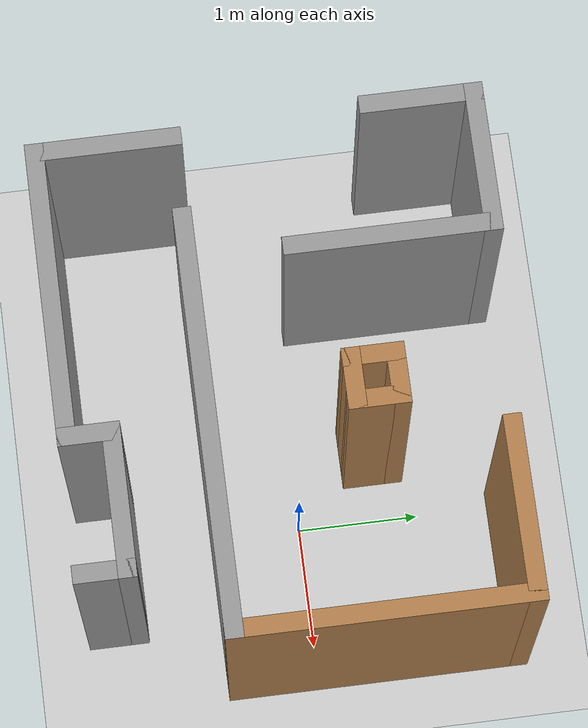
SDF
<sdf version="1.6">
 <world name="default">
  <light name="sun" type="directional">
   <pose>0 0 10 0 -0 0</pose>
   <diffuse>0.8 0.8 0.8 1</diffuse>
   <specular>0.2 0.2 0.2 1</specular>
   <attenuation>
    <range>1000</range>
    <constant>0.9</constant>
    <linear>0.01</linear>
    <quadratic>0.001</quadratic>
   </attenuation>
   <direction>-0.5 0.1 -0.9</direction>
  </light>
  <model name="ground_plane">
   <static>1</static>
   <link name="link">
    <collision name="collision">
     <geometry><plane><normal>0 0 1</normal><size>100 100</size></plane></geometry>
     <surface>
      <contact><collide_bitmask>65535</collide_bitmask></contact>
      <friction><ode><mu>100</mu><mu2>50</mu2></ode></friction>
     </surface>
    </collision>
    <visual name="visual">
     <cast_shadows>0</cast_shadows>
     <geometry><plane><normal>0 0 1</normal><size>100 100</size></plane></geometry>
     <material>
      <script><uri>file://media/materials/scripts/gazebo.material</uri><name>Gazebo/Grey</name></script>
     </material>
    </visual>
   </link>
  </model>
  <gravity>0 0 -9.8</gravity>
  <magnetic_field>6e-06 2.3e-05 -4.2e-05</magnetic_field>
  <atmosphere type="adiabatic"/>
  <physics name="default_physics" default="0" type="ode">
   <max_step_size>0.001</max_step_size>
   <real_time_factor>1</real_time_factor>
   <real_time_update_rate>1000</real_time_update_rate>
  </physics>
  <scene><ambient>0.4 0.4 0.4 1</ambient><background>0.7 0.7 0.7 1</background><shadows>1</shadows></scene>
  <audio><device>default</device></audio>
  <spherical_coordinates>
   <surface_model>EARTH_WGS84</surface_model>
   <latitude_deg>0</latitude_deg>
   <longitude_deg>0</longitude_deg>
   <elevation>0</elevation>
   <heading_deg>0</heading_deg>
  </spherical_coordinates>
  <model name="new_room">
   <pose>-0.758819 -0.016617 0 0 -0 0</pose>
   <link name="Wall_11">
    <collision name="Wall_11_Collision">
     <geometry><box><size>1.75 0.15 2.5</size></box></geometry>
     <pose>0 0 1.25 0 -0 0</pose>
    </collision>
    <visual name="Wall_11_Visual">
     <pose>0 0 1.25 0 -0 0</pose>
     <geometry><box><size>1.75 0.15 2.5</size></box></geometry>
     <material>
      <script><uri>file://media/materials/scripts/gazebo.material</uri><name>Gazebo/Grey</name></script>
      <ambient>1 1 1 1</ambient>
     </material>
     <meta><layer>0</layer></meta>
    </visual>
    <pose>-0.951963 0.966587 0 0 -0 1.5708</pose>
   </link>
   <link name="Wall_12">
    <collision name="Wall_12_Collision">
     <geometry><box><size>1.25 0.15 2.5</size></box></geometry>
     <pose>0 0 1.25 0 -0 0</pose>
    </collision>
    <visual name="Wall_12_Visual">
     <pose>0 0 1.25 0 -0 0</pose>
     <geometry><box><size>1.25 0.15 2.5</size></box></geometry>
     <material>
      <script><uri>file://media/materials/scripts/gazebo.material</uri><name>Gazebo/Grey</name></script>
      <ambient>1 1 1 1</ambient>
     </material>
     <meta><layer>0</layer></meta>
    </visual>
    <pose>-1.50196 1.76659 0 0 -0 3.14159</pose>
   </link>
   <link name="Wall_13">
    <collision name="Wall_13_Collision">
     <geometry><box><size>1 0.15 2.5</size></box></geometry>
     <pose>0 0 1.25 0 -0 0</pose>
    </collision>
    <visual name="Wall_13_Visual">
     <pose>0 0 1.25 0 -0 0</pose>
     <geometry><box><size>1 0.15 2.5</size></box></geometry>
     <material>
      <script><uri>file://media/materials/scripts/gazebo.material</uri><name>Gazebo/Grey</name></script>
      <ambient>1 1 1 1</ambient>
     </material>
     <meta><layer>0</layer></meta>
    </visual>
    <pose>-2.05196 1.34159 0 0 -0 -1.5708</pose>
   </link>
   <link name="Wall_15">
    <collision name="Wall_15_Collision">
     <geometry><box><size>1.25 0.15 2.5</size></box></geometry>
     <pose>0 0 1.25 0 -0 0</pose>
    </collision>
    <visual name="Wall_15_Visual">
     <pose>0 0 1.25 0 -0 0</pose>
     <geometry><box><size>1.25 0.15 2.5</size></box></geometry>
     <material>
      <script><uri>file://media/materials/scripts/gazebo.material</uri><name>Gazebo/Grey</name></script>
      <ambient>1 1 1 1</ambient>
     </material>
     <meta><layer>0</layer></meta>
    </visual>
    <pose>-1.97029 -1.21659 0 0 -0 -1.5708</pose>
   </link>
   <link name="Wall_16">
    <collision name="Wall_16_Collision">
     <geometry><box><size>2.5 0.15 2.5</size></box></geometry>
     <pose>0 0 1.25 0 -0 0</pose>
    </collision>
    <visual name="Wall_16_Visual">
     <pose>0 0 1.25 0 -0 0</pose>
     <geometry><box><size>2.5 0.15 2.5</size></box></geometry>
     <material>
      <script><uri>file://media/materials/scripts/gazebo.material</uri><name>Gazebo/Grey</name></script>
      <ambient>1 1 1 1</ambient>
     </material>
     <meta><layer>0</layer></meta>
    </visual>
    <pose>-0.795288 -1.76659 0 0 -0 0</pose>
   </link>
   <link name="Wall_17">
    <collision name="Wall_17_Collision">
     <geometry><box><size>0.5 0.15 2.5</size></box></geometry>
     <pose>0 0 1.25 0 -0 0</pose>
    </collision>
    <visual name="Wall_17_Visual">
     <pose>0 0 1.25 0 -0 0</pose>
     <geometry><box><size>0.5 0.15 2.5</size></box></geometry>
     <material>
      <script><uri>file://media/materials/scripts/gazebo.material</uri><name>Gazebo/Grey</name></script>
      <ambient>1 1 1 1</ambient>
     </material>
     <meta><layer>0</layer></meta>
    </visual>
    <pose>0.379712 -1.59159 0 0 -0 1.5708</pose>
   </link>
   <link name="Wall_18">
    <collision name="Wall_18_Collision">
     <geometry><box><size>1.25 0.15 2.5</size></box></geometry>
     <pose>0 0 1.25 0 -0 0</pose>
    </collision>
    <visual name="Wall_18_Visual">
     <pose>0 0 1.25 0 -0 0</pose>
     <geometry><box><size>1.25 0.15 2.5</size></box></geometry>
     <material>
      <script><uri>file://media/materials/scripts/gazebo.material</uri><name>Gazebo/Grey</name></script>
      <ambient>1 1 1 1</ambient>
     </material>
     <meta><layer>0</layer></meta>
    </visual>
    <pose>0.929712 -1.41659 0 0 -0 0</pose>
   </link>
   <link name="Wall_19">
    <collision name="Wall_19_Collision">
     <geometry><box><size>0.5 0.15 2.5</size></box></geometry>
     <pose>0 0 1.25 0 -0 0</pose>
    </collision>
    <visual name="Wall_19_Visual">
     <pose>0 0 1.25 0 -0 0</pose>
     <geometry><box><size>0.5 0.15 2.5</size></box></geometry>
     <material>
      <script><uri>file://media/materials/scripts/gazebo.material</uri><name>Gazebo/Grey</name></script>
      <ambient>1 1 1 1</ambient>
     </material>
     <meta><layer>0</layer></meta>
    </visual>
    <pose>1.47971 -1.59159 0 0 -0 -1.5708</pose>
   </link>
   <link name="Wall_2">
    <collision name="Wall_2_Collision">
     <geometry><box><size>3.5 0.15 2.5</size></box></geometry>
     <pose>0 0 1.25 0 -0 0</pose>
    </collision>
    <visual name="Wall_2_Visual">
     <pose>0 0 1.25 0 -0 0</pose>
     <geometry><box><size>3.5 0.15 2.5</size></box></geometry>
     <material>
      <script><uri>file://media/materials/scripts/gazebo.material</uri><name>Gazebo/Grey</name></script>
      <ambient>1 1 1 1</ambient>
     </material>
     <meta><layer>0</layer></meta>
    </visual>
    <pose>0.376962 -0.661589 0 0 -0 0</pose>
   </link>
   <link name="Wall_3">
    <collision name="Wall_3_Collision">
     <geometry><box><size>2.5 0.15 2.5</size></box></geometry>
     <pose>0 0 1.25 0 -0 0</pose>
    </collision>
    <visual name="Wall_3_Visual">
     <pose>0 0 1.25 0 -0 0</pose>
     <geometry><box><size>2.5 0.15 2.5</size></box></geometry>
     <material>
      <script><uri>file://media/materials/scripts/gazebo.material</uri><name>Gazebo/Wood</name></script>
      <ambient>1 1 1 1</ambient>
     </material>
     <meta><layer>0</layer></meta>
    </visual>
    <pose>2.05196 0.513411 0 0 -0 1.5708</pose>
   </link>
   <link name="Wall_4">
    <collision name="Wall_4_Collision">
     <geometry><box><size>1.5 0.15 2.5</size></box></geometry>
     <pose>0 0 1.25 0 -0 0</pose>
    </collision>
    <visual name="Wall_4_Visual">
     <pose>0 0 1.25 0 -0 0</pose>
     <geometry><box><size>1.5 0.15 2.5</size></box></geometry>
     <material>
      <script><uri>file://media/materials/scripts/gazebo.material</uri><name>Gazebo/Wood</name></script>
      <ambient>1 1 1 1</ambient>
     </material>
     <meta><layer>0</layer></meta>
    </visual>
    <pose>1.37696 1.68841 0 0 -0 3.14159</pose>
   </link>
   <link name="Wall_6">
    <collision name="Wall_6_Collision">
     <geometry><box><size>0.5 0.15 2.5</size></box></geometry>
     <pose>0 0 1.25 0 -0 0</pose>
    </collision>
    <visual name="Wall_6_Visual">
     <pose>0 0 1.25 0 -0 0</pose>
     <geometry><box><size>0.5 0.15 2.5</size></box></geometry>
     <material>
      <script><uri>file://media/materials/scripts/gazebo.material</uri><name>Gazebo/Wood</name></script>
      <ambient>1 1 1 1</ambient>
     </material>
     <meta><layer>0</layer></meta>
    </visual>
    <pose>0.013717 0.685047 0 0 -0 -1.5708</pose>
   </link>
   <link name="Wall_7">
    <collision name="Wall_7_Collision">
     <geometry><box><size>0.5 0.15 2.5</size></box></geometry>
     <pose>0 0 1.25 0 -0 0</pose>
    </collision>
    <visual name="Wall_7_Visual">
     <pose>0 0 1.25 0 -0 0</pose>
     <geometry><box><size>0.5 0.15 2.5</size></box></geometry>
     <material>
      <script><uri>file://media/materials/scripts/gazebo.material</uri><name>Gazebo/Wood</name></script>
      <ambient>1 1 1 1</ambient>
     </material>
     <meta><layer>0</layer></meta>
    </visual>
    <pose>0.188717 0.510047 0 0 -0 0</pose>
   </link>
   <link name="Wall_8">
    <collision name="Wall_8_Collision">
     <geometry><box><size>0.5 0.15 2.5</size></box></geometry>
     <pose>0 0 1.25 0 -0 0</pose>
    </collision>
    <visual name="Wall_8_Visual">
     <pose>0 0 1.25 0 -0 0</pose>
     <geometry><box><size>0.5 0.15 2.5</size></box></geometry>
     <material>
      <script><uri>file://media/materials/scripts/gazebo.material</uri><name>Gazebo/Wood</name></script>
      <ambient>1 1 1 1</ambient>
     </material>
     <meta><layer>0</layer></meta>
    </visual>
    <pose>0.363717 0.685047 0 0 -0 1.5708</pose>
   </link>
   <link name="Wall_9">
    <collision name="Wall_9_Collision">
     <geometry><box><size>0.5 0.15 2.5</size></box></geometry>
     <pose>0 0 1.25 0 -0 0</pose>
    </collision>
    <visual name="Wall_9_Visual">
     <pose>0 0 1.25 0 -0 0</pose>
     <geometry><box><size>0.5 0.15 2.5</size></box></geometry>
     <material>
      <script><uri>file://media/materials/scripts/gazebo.material</uri><name>Gazebo/Wood</name></script>
      <ambient>1 1 1 1</ambient>
     </material>
     <meta><layer>0</layer></meta>
    </visual>
    <pose>0.188717 0.860047 0 0 -0 3.14159</pose>
   </link>
   <static>1</static>
  </model>
 </world>
</sdf>
